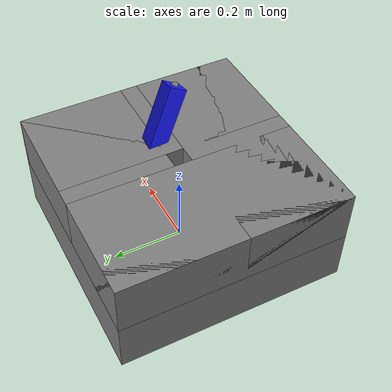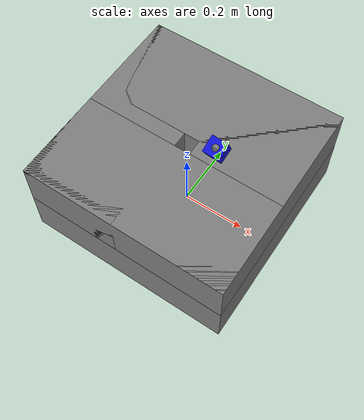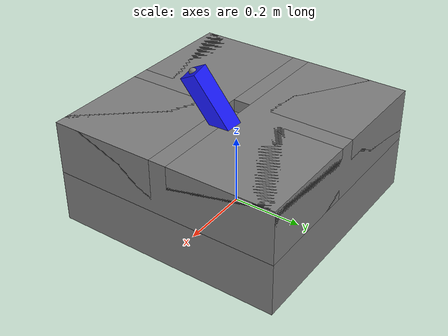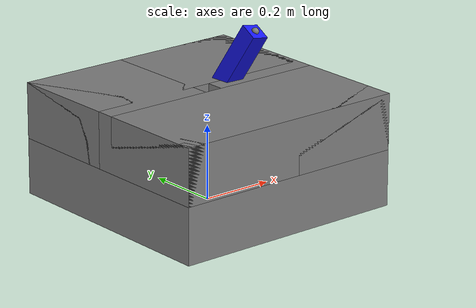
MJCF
<mujoco model="peg_in_hole">
  <!--
  - Timestep updated to 0.0008s as per T=4, Ncnt=20, Nsim=250.
  - Added 'gravity' to option.
  -->
  <option timestep="0.0008" integrator="implicitfast" iterations="1000" cone="elliptic" o_solimp="0.0000 0.000 0.0001 0.5 1" o_solref="-100000 -500" o_margin="0.00005" gravity="0 0 -9.81">
  </option>

  <asset>
    <texture type="skybox" builtin="gradient" width="128" height="128" rgb1=".6 .8 1.0" rgb2=".2 .2 .2" />
    <texture name="grid" type="2d" builtin="checker" width="512" height="512" rgb1=".1 .2 .3" rgb2=".2 .3 .4" />
    <material name="grid" texture="grid" texrepeat="1 1" texuniform="true" reflectance=".2" />
  </asset>

  <visual>
    <map force="0.1" zfar="30" />
    <rgba haze="0.15 0.25 0.35 1" />
    <global offwidth="2560" offheight="1440" elevation="-20" azimuth="120" />
  </visual>

  <worldbody>
    <light pos="0 -0.1 0.5" dir="0 0.2 -1" diffuse="0.7 0.7 0.7" specular="0.3 0.3 0.3" directional="true" />

    <!-- Renamed to 'hole' for clarity -->
    <body name="hole" pos="0 0 0.15" quat="1 0 0 0">
      <geom name="framing1" type="box" pos="-0.175 0 0.075" size="0.15 0.325 0.075" rgba=".5 .5 .5 1" />
      <geom name="framing2" type="box" pos="0.175 0 0.075" size="0.15 0.325 0.075" rgba=".5 .5 .5 1" />
      <geom name="framing3" type="box" pos="0 -0.175 0.075" size="0.325 0.15 0.075" rgba=".5 .5 .5 1" />
      <geom name="framing4" type="box" pos="0 0.175 0.075" size="0.325 0.15 0.075" rgba=".5 .5 .5 1" />
      <geom name="framing5" type="box" pos="0 0 -0.075" size="0.325 0.325 0.075" rgba=".5 .5 .5 1" />
    </body>

    <!-- Renamed to 'peg' for clarity -->
    <body name="peg" pos="0.1 0.0 0.35" quat="0.9659 0.2403 0.0961 0">
      <!-- Added a free joint to allow 6-DOF control -->
      <joint name="peg_joint" type="free" damping="50.0" />
      <geom name="peg_geom" type="box" pos="0 0 0" size="0.025 0.025 0.1" rgba=".1 .1 1 1" />
      <!-- Added a site for precise position tracking -->
      <site name="peg_tip" pos="0 0 -0.1" size="0.01" />
      <site name="peg_top" pos="0 0 0.1" size="0.01" />
    </body>
  </worldbody>

  <actuator>
    <position joint="peg_joint" name="peg_x" kp="2000" />
    <position joint="peg_joint" name="peg_y" kp="2000" />
    <position joint="peg_joint" name="peg_z" kp="2000" />
    <position joint="peg_joint" name="peg_roll" kp="300" />
    <position joint="peg_joint" name="peg_pitch" kp="300" />
    <position joint="peg_joint" name="peg_yaw" kp="300" />
  </actuator>

  <keyframe>
    <!-- Goal state for reference -->
    <key name="goal" qpos="0.0 0.0 0.1 1 0 0 0" />
  </keyframe>
</mujoco>
